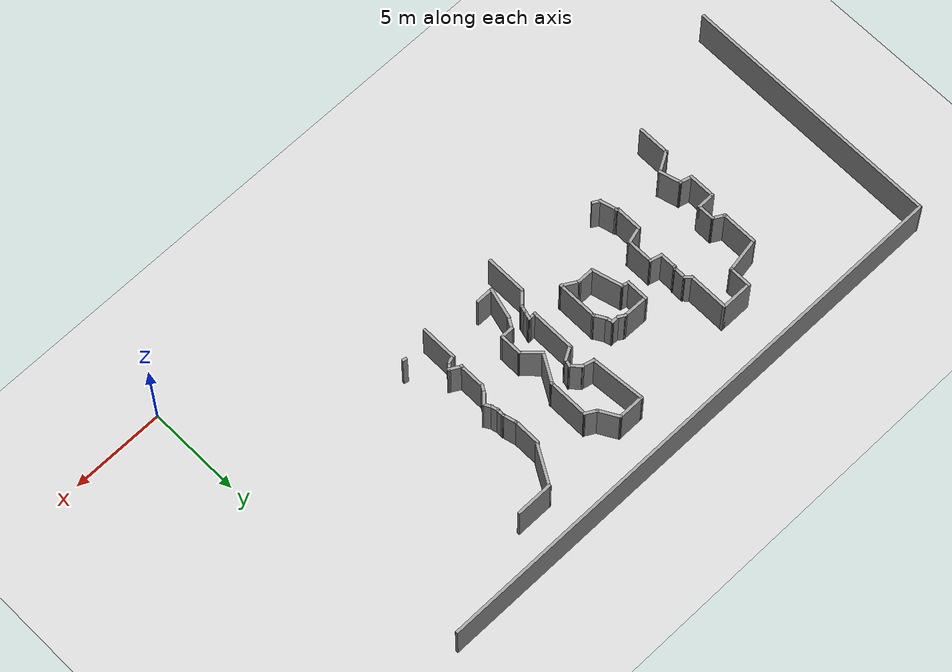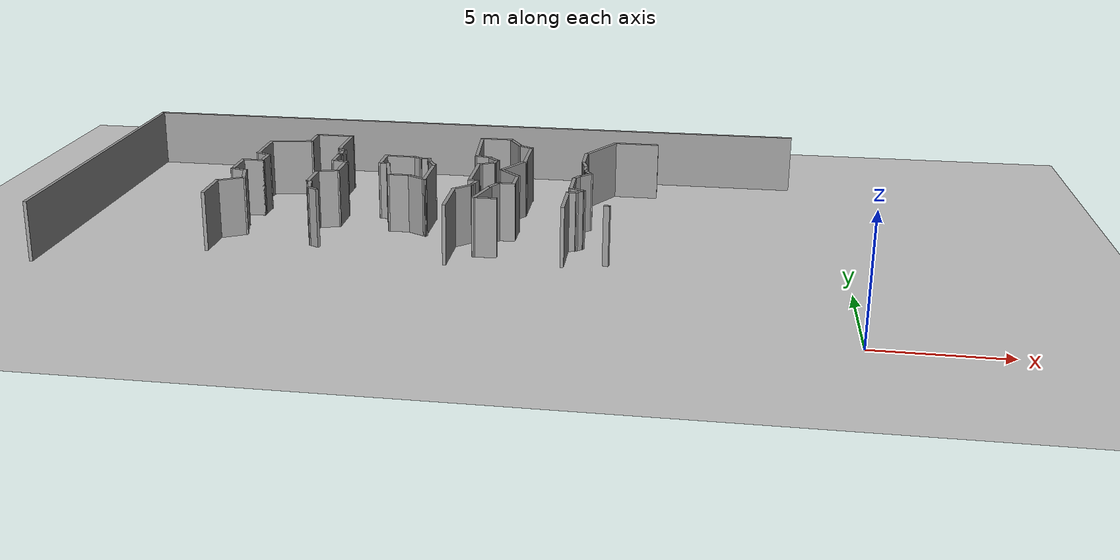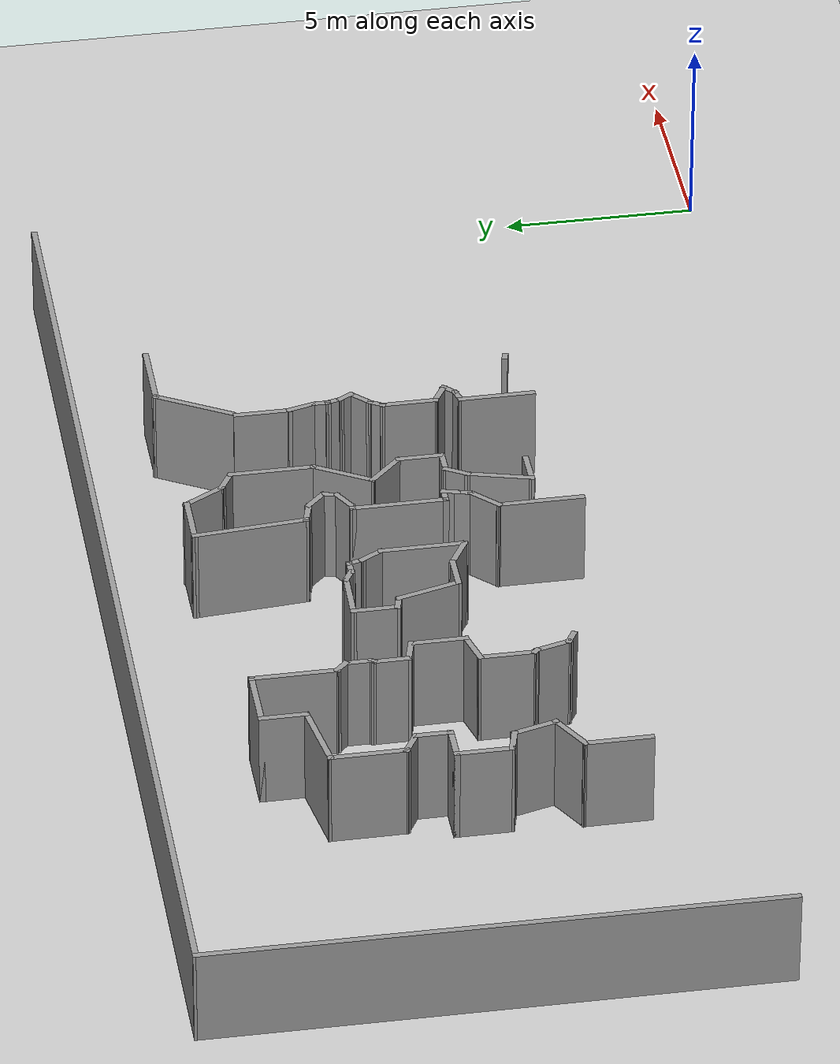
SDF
<sdf version="1.7">
 <world name="default">
  <model name="ground_plane">
   <static>1</static>
   <link name="link">
    <collision name="collision">
     <geometry><plane><normal>0 0 1</normal><size>100 100</size></plane></geometry>
     <surface>
      <contact><collide_bitmask>65535</collide_bitmask></contact>
      <friction><ode><mu>100</mu><mu2>50</mu2></ode></friction>
     </surface>
    </collision>
    <visual name="visual">
     <cast_shadows>0</cast_shadows>
     <geometry><plane><normal>0 0 1</normal><size>100 100</size></plane></geometry>
     <material>
      <script><uri>file://media/materials/scripts/gazebo.material</uri><name>Gazebo/Grey</name></script>
     </material>
    </visual>
   </link>
  </model>
  <model name="latest_world">
   <pose>-1.4911 -0.096187 0 0 -0 0</pose>
   <link name="Wall_0">
    <collision name="Wall_0_Collision">
     <geometry><box><size>30.25 0.15 2.5</size></box></geometry>
     <pose>0 0 1.25 0 -0 0</pose>
    </collision>
    <visual name="Wall_0_Visual">
     <pose>0 0 1.25 0 -0 0</pose>
     <geometry><box><size>30.25 0.15 2.5</size></box></geometry>
     <material>
      <script><uri>file://media/materials/scripts/gazebo.material</uri><name>Gazebo/Grey</name></script>
      <ambient>1 1 1 1</ambient>
     </material>
     <meta><layer>0</layer></meta>
    </visual>
    <pose>-15.4949 18.0157 0 0 -0 0</pose>
   </link>
   <link name="Wall_157">
    <collision name="Wall_157_Collision">
     <geometry><box><size>14.3423 0.15 2.5</size></box></geometry>
     <pose>0 0 1.25 0 -0 0</pose>
    </collision>
    <visual name="Wall_157_Visual">
     <pose>0 0 1.25 0 -0 0</pose>
     <geometry><box><size>14.3423 0.15 2.5</size></box></geometry>
     <material>
      <script><uri>file://media/materials/scripts/gazebo.material</uri><name>Gazebo/Grey</name></script>
      <ambient>1 1 1 1</ambient>
     </material>
     <meta><layer>0</layer></meta>
    </visual>
    <pose>-30.5913 10.9197 0 0 -0 1.56426</pose>
   </link>
   <link name="Wall_159">
    <collision name="Wall_159_Collision">
     <geometry><box><size>2 0.15 2.5</size></box></geometry>
     <pose>0 0 1.25 0 -0 0</pose>
    </collision>
    <visual name="Wall_159_Visual">
     <pose>0 0 1.25 0 -0 0</pose>
     <geometry><box><size>2 0.15 2.5</size></box></geometry>
     <material>
      <script><uri>file://media/materials/scripts/gazebo.material</uri><name>Gazebo/Grey</name></script>
      <ambient>1 1 1 1</ambient>
     </material>
     <meta><layer>0</layer></meta>
    </visual>
    <pose>-23.7095 12.8715 0 0 -0 -1.5708</pose>
   </link>
   <link name="Wall_160">
    <collision name="Wall_160_Collision">
     <geometry><box><size>0.75 0.15 2.5</size></box></geometry>
     <pose>0 0 1.25 0 -0 0</pose>
    </collision>
    <visual name="Wall_160_Visual">
     <pose>0 0 1.25 0 -0 0</pose>
     <geometry><box><size>0.75 0.15 2.5</size></box></geometry>
     <material>
      <script><uri>file://media/materials/scripts/gazebo.material</uri><name>Gazebo/Grey</name></script>
      <ambient>1 1 1 1</ambient>
     </material>
     <meta><layer>0</layer></meta>
    </visual>
    <pose>-23.4497 11.7965 0 0 -0 -0.523599</pose>
   </link>
   <link name="Wall_161">
    <collision name="Wall_161_Collision">
     <geometry><box><size>1 0.15 2.5</size></box></geometry>
     <pose>0 0 1.25 0 -0 0</pose>
    </collision>
    <visual name="Wall_161_Visual">
     <pose>0 0 1.25 0 -0 0</pose>
     <geometry><box><size>1 0.15 2.5</size></box></geometry>
     <material>
      <script><uri>file://media/materials/scripts/gazebo.material</uri><name>Gazebo/Grey</name></script>
      <ambient>1 1 1 1</ambient>
     </material>
     <meta><layer>0</layer></meta>
    </visual>
    <pose>-23.1899 11.2215 0 0 -0 -1.5708</pose>
   </link>
   <link name="Wall_162">
    <collision name="Wall_162_Collision">
     <geometry><box><size>1 0.15 2.5</size></box></geometry>
     <pose>0 0 1.25 0 -0 0</pose>
    </collision>
    <visual name="Wall_162_Visual">
     <pose>0 0 1.25 0 -0 0</pose>
     <geometry><box><size>1 0.15 2.5</size></box></geometry>
     <material>
      <script><uri>file://media/materials/scripts/gazebo.material</uri><name>Gazebo/Grey</name></script>
      <ambient>1 1 1 1</ambient>
     </material>
     <meta><layer>0</layer></meta>
    </visual>
    <pose>-23.6149 10.7965 0 0 -0 3.14159</pose>
   </link>
   <link name="Wall_163">
    <collision name="Wall_163_Collision">
     <geometry><box><size>1.5 0.15 2.5</size></box></geometry>
     <pose>0 0 1.25 0 -0 0</pose>
    </collision>
    <visual name="Wall_163_Visual">
     <pose>0 0 1.25 0 -0 0</pose>
     <geometry><box><size>1.5 0.15 2.5</size></box></geometry>
     <material>
      <script><uri>file://media/materials/scripts/gazebo.material</uri><name>Gazebo/Grey</name></script>
      <ambient>1 1 1 1</ambient>
     </material>
     <meta><layer>0</layer></meta>
    </visual>
    <pose>-24.0399 10.1215 0 0 -0 -1.5708</pose>
   </link>
   <link name="Wall_164">
    <collision name="Wall_164_Collision">
     <geometry><box><size>0.75 0.15 2.5</size></box></geometry>
     <pose>0 0 1.25 0 -0 0</pose>
    </collision>
    <visual name="Wall_164_Visual">
     <pose>0 0 1.25 0 -0 0</pose>
     <geometry><box><size>0.75 0.15 2.5</size></box></geometry>
     <material>
      <script><uri>file://media/materials/scripts/gazebo.material</uri><name>Gazebo/Grey</name></script>
      <ambient>1 1 1 1</ambient>
     </material>
     <meta><layer>0</layer></meta>
    </visual>
    <pose>-23.7501 9.36881 0 0 -0 -0.261799</pose>
   </link>
   <link name="Wall_165">
    <collision name="Wall_165_Collision">
     <geometry><box><size>1.25 0.15 2.5</size></box></geometry>
     <pose>0 0 1.25 0 -0 0</pose>
    </collision>
    <visual name="Wall_165_Visual">
     <pose>0 0 1.25 0 -0 0</pose>
     <geometry><box><size>1.25 0.15 2.5</size></box></geometry>
     <material>
      <script><uri>file://media/materials/scripts/gazebo.material</uri><name>Gazebo/Grey</name></script>
      <ambient>1 1 1 1</ambient>
     </material>
     <meta><layer>0</layer></meta>
    </visual>
    <pose>-23.318 8.7599 0 0 -0 -1.309</pose>
   </link>
   <link name="Wall_166">
    <collision name="Wall_166_Collision">
     <geometry><box><size>1.25 0.15 2.5</size></box></geometry>
     <pose>0 0 1.25 0 -0 0</pose>
    </collision>
    <visual name="Wall_166_Visual">
     <pose>0 0 1.25 0 -0 0</pose>
     <geometry><box><size>1.25 0.15 2.5</size></box></geometry>
     <material>
      <script><uri>file://media/materials/scripts/gazebo.material</uri><name>Gazebo/Grey</name></script>
      <ambient>1 1 1 1</ambient>
     </material>
     <meta><layer>0</layer></meta>
    </visual>
    <pose>-23.6519 7.95364 0 0 -0 -2.61799</pose>
   </link>
   <link name="Wall_167">
    <collision name="Wall_167_Collision">
     <geometry><box><size>1.75 0.15 2.5</size></box></geometry>
     <pose>0 0 1.25 0 -0 0</pose>
    </collision>
    <visual name="Wall_167_Visual">
     <pose>0 0 1.25 0 -0 0</pose>
     <geometry><box><size>1.75 0.15 2.5</size></box></geometry>
     <material>
      <script><uri>file://media/materials/scripts/gazebo.material</uri><name>Gazebo/Grey</name></script>
      <ambient>1 1 1 1</ambient>
     </material>
     <meta><layer>0</layer></meta>
    </visual>
    <pose>-24.1282 6.87864 0 0 -0 -1.5708</pose>
   </link>
   <link name="Wall_170">
    <collision name="Wall_170_Collision">
     <geometry><box><size>0.5 0.15 2.5</size></box></geometry>
     <pose>0 0 1.25 0 -0 0</pose>
    </collision>
    <visual name="Wall_170_Visual">
     <pose>0 0 1.25 0 -0 0</pose>
     <geometry><box><size>0.5 0.15 2.5</size></box></geometry>
     <material>
      <script><uri>file://media/materials/scripts/gazebo.material</uri><name>Gazebo/Grey</name></script>
      <ambient>1 1 1 1</ambient>
     </material>
     <meta><layer>0</layer></meta>
    </visual>
    <pose>-19.9298 7.26614 0 0 -0 2.61799</pose>
   </link>
   <link name="Wall_171">
    <collision name="Wall_171_Collision">
     <geometry><box><size>1 0.15 2.5</size></box></geometry>
     <pose>0 0 1.25 0 -0 0</pose>
    </collision>
    <visual name="Wall_171_Visual">
     <pose>0 0 1.25 0 -0 0</pose>
     <geometry><box><size>1 0.15 2.5</size></box></geometry>
     <material>
      <script><uri>file://media/materials/scripts/gazebo.material</uri><name>Gazebo/Grey</name></script>
      <ambient>1 1 1 1</ambient>
     </material>
     <meta><layer>0</layer></meta>
    </visual>
    <pose>-20.1913 7.76416 0 0 -0 1.8326</pose>
   </link>
   <link name="Wall_172">
    <collision name="Wall_172_Collision">
     <geometry><box><size>0.25 0.15 2.5</size></box></geometry>
     <pose>0 0 1.25 0 -0 0</pose>
    </collision>
    <visual name="Wall_172_Visual">
     <pose>0 0 1.25 0 -0 0</pose>
     <geometry><box><size>0.25 0.15 2.5</size></box></geometry>
     <material>
      <script><uri>file://media/materials/scripts/gazebo.material</uri><name>Gazebo/Grey</name></script>
      <ambient>1 1 1 1</ambient>
     </material>
     <meta><layer>0</layer></meta>
    </visual>
    <pose>-20.3367 8.21004 0 0 -0 2.35619</pose>
   </link>
   <link name="Wall_173">
    <collision name="Wall_173_Collision">
     <geometry><box><size>1.5 0.15 2.5</size></box></geometry>
     <pose>0 0 1.25 0 -0 0</pose>
    </collision>
    <visual name="Wall_173_Visual">
     <pose>0 0 1.25 0 -0 0</pose>
     <geometry><box><size>1.5 0.15 2.5</size></box></geometry>
     <material>
      <script><uri>file://media/materials/scripts/gazebo.material</uri><name>Gazebo/Grey</name></script>
      <ambient>1 1 1 1</ambient>
     </material>
     <meta><layer>0</layer></meta>
    </visual>
    <pose>-20.372 8.92039 0 0 -0 1.5708</pose>
   </link>
   <link name="Wall_174">
    <collision name="Wall_174_Collision">
     <geometry><box><size>1 0.15 2.5</size></box></geometry>
     <pose>0 0 1.25 0 -0 0</pose>
    </collision>
    <visual name="Wall_174_Visual">
     <pose>0 0 1.25 0 -0 0</pose>
     <geometry><box><size>1 0.15 2.5</size></box></geometry>
     <material>
      <script><uri>file://media/materials/scripts/gazebo.material</uri><name>Gazebo/Grey</name></script>
      <ambient>1 1 1 1</ambient>
     </material>
     <meta><layer>0</layer></meta>
    </visual>
    <pose>-19.9615 9.70539 0 0 -0 0.261799</pose>
   </link>
   <link name="Wall_175">
    <collision name="Wall_175_Collision">
     <geometry><box><size>1.5 0.15 2.5</size></box></geometry>
     <pose>0 0 1.25 0 -0 0</pose>
    </collision>
    <visual name="Wall_175_Visual">
     <pose>0 0 1.25 0 -0 0</pose>
     <geometry><box><size>1.5 0.15 2.5</size></box></geometry>
     <material>
      <script><uri>file://media/materials/scripts/gazebo.material</uri><name>Gazebo/Grey</name></script>
      <ambient>1 1 1 1</ambient>
     </material>
     <meta><layer>0</layer></meta>
    </visual>
    <pose>-19.551 10.4904 0 0 -0 1.5708</pose>
   </link>
   <link name="Wall_176">
    <collision name="Wall_176_Collision">
     <geometry><box><size>0.75 0.15 2.5</size></box></geometry>
     <pose>0 0 1.25 0 -0 0</pose>
    </collision>
    <visual name="Wall_176_Visual">
     <pose>0 0 1.25 0 -0 0</pose>
     <geometry><box><size>0.75 0.15 2.5</size></box></geometry>
     <material>
      <script><uri>file://media/materials/scripts/gazebo.material</uri><name>Gazebo/Grey</name></script>
      <ambient>1 1 1 1</ambient>
     </material>
     <meta><layer>0</layer></meta>
    </visual>
    <pose>-19.8408 11.243 0 0 -0 2.87979</pose>
   </link>
   <link name="Wall_177">
    <collision name="Wall_177_Collision">
     <geometry><box><size>1 0.15 2.5</size></box></geometry>
     <pose>0 0 1.25 0 -0 0</pose>
    </collision>
    <visual name="Wall_177_Visual">
     <pose>0 0 1.25 0 -0 0</pose>
     <geometry><box><size>1 0.15 2.5</size></box></geometry>
     <material>
      <script><uri>file://media/materials/scripts/gazebo.material</uri><name>Gazebo/Grey</name></script>
      <ambient>1 1 1 1</ambient>
     </material>
     <meta><layer>0</layer></meta>
    </visual>
    <pose>-20.1306 11.7457 0 0 -0 1.5708</pose>
   </link>
   <link name="Wall_178">
    <collision name="Wall_178_Collision">
     <geometry><box><size>0.25 0.15 2.5</size></box></geometry>
     <pose>0 0 1.25 0 -0 0</pose>
    </collision>
    <visual name="Wall_178_Visual">
     <pose>0 0 1.25 0 -0 0</pose>
     <geometry><box><size>0.25 0.15 2.5</size></box></geometry>
     <material>
      <script><uri>file://media/materials/scripts/gazebo.material</uri><name>Gazebo/Grey</name></script>
      <ambient>1 1 1 1</ambient>
     </material>
     <meta><layer>0</layer></meta>
    </visual>
    <pose>-20.1056 12.214 0 0 -0 1.0472</pose>
   </link>
   <link name="Wall_179">
    <collision name="Wall_179_Collision">
     <geometry><box><size>0.75 0.15 2.5</size></box></geometry>
     <pose>0 0 1.25 0 -0 0</pose>
    </collision>
    <visual name="Wall_179_Visual">
     <pose>0 0 1.25 0 -0 0</pose>
     <geometry><box><size>0.75 0.15 2.5</size></box></geometry>
     <material>
      <script><uri>file://media/materials/scripts/gazebo.material</uri><name>Gazebo/Grey</name></script>
      <ambient>1 1 1 1</ambient>
     </material>
     <meta><layer>0</layer></meta>
    </visual>
    <pose>-20.0806 12.5573 0 0 -0 1.5708</pose>
   </link>
   <link name="Wall_180">
    <collision name="Wall_180_Collision">
     <geometry><box><size>0.5 0.15 2.5</size></box></geometry>
     <pose>0 0 1.25 0 -0 0</pose>
    </collision>
    <visual name="Wall_180_Visual">
     <pose>0 0 1.25 0 -0 0</pose>
     <geometry><box><size>0.5 0.15 2.5</size></box></geometry>
     <material>
      <script><uri>file://media/materials/scripts/gazebo.material</uri><name>Gazebo/Grey</name></script>
      <ambient>1 1 1 1</ambient>
     </material>
     <meta><layer>0</layer></meta>
    </visual>
    <pose>-20.2043 12.981 0 0 -0 2.35619</pose>
   </link>
   <link name="Wall_181">
    <collision name="Wall_181_Collision">
     <geometry><box><size>2.25 0.15 2.5</size></box></geometry>
     <pose>0 0 1.25 0 -0 0</pose>
    </collision>
    <visual name="Wall_181_Visual">
     <pose>0 0 1.25 0 -0 0</pose>
     <geometry><box><size>2.25 0.15 2.5</size></box></geometry>
     <material>
      <script><uri>file://media/materials/scripts/gazebo.material</uri><name>Gazebo/Grey</name></script>
      <ambient>1 1 1 1</ambient>
     </material>
     <meta><layer>0</layer></meta>
    </visual>
    <pose>-20.3281 14.1548 0 0 -0 1.5708</pose>
   </link>
   <link name="Wall_182">
    <collision name="Wall_182_Collision">
     <geometry><box><size>1.75 0.15 2.5</size></box></geometry>
     <pose>0 0 1.25 0 -0 0</pose>
    </collision>
    <visual name="Wall_182_Visual">
     <pose>0 0 1.25 0 -0 0</pose>
     <geometry><box><size>1.75 0.15 2.5</size></box></geometry>
     <material>
      <script><uri>file://media/materials/scripts/gazebo.material</uri><name>Gazebo/Grey</name></script>
      <ambient>1 1 1 1</ambient>
     </material>
     <meta><layer>0</layer></meta>
    </visual>
    <pose>-21.1281 15.2048 0 0 -0 3.14159</pose>
   </link>
   <link name="Wall_183">
    <collision name="Wall_183_Collision">
     <geometry><box><size>1.25 0.15 2.5</size></box></geometry>
     <pose>0 0 1.25 0 -0 0</pose>
    </collision>
    <visual name="Wall_183_Visual">
     <pose>0 0 1.25 0 -0 0</pose>
     <geometry><box><size>1.25 0.15 2.5</size></box></geometry>
     <material>
      <script><uri>file://media/materials/scripts/gazebo.material</uri><name>Gazebo/Grey</name></script>
      <ambient>1 1 1 1</ambient>
     </material>
     <meta><layer>0</layer></meta>
    </visual>
    <pose>-21.9281 14.6548 0 0 -0 -1.5708</pose>
   </link>
   <link name="Wall_186">
    <collision name="Wall_186_Collision">
     <geometry><box><size>1.95791 0.15 2.5</size></box></geometry>
     <pose>0 0 1.25 0 -0 0</pose>
    </collision>
    <visual name="Wall_186_Visual">
     <pose>0 0 1.25 0 -0 0</pose>
     <geometry><box><size>1.95791 0.15 2.5</size></box></geometry>
     <material>
      <script><uri>file://media/materials/scripts/gazebo.material</uri><name>Gazebo/Grey</name></script>
      <ambient>1 1 1 1</ambient>
     </material>
     <meta><layer>0</layer></meta>
    </visual>
    <pose>-22.8188 13.9506 0 0 -0 0.171375</pose>
   </link>
   <link name="Wall_188">
    <collision name="Wall_188_Collision">
     <geometry><box><size>1.25 0.15 2.5</size></box></geometry>
     <pose>0 0 1.25 0 -0 0</pose>
    </collision>
    <visual name="Wall_188_Visual">
     <pose>0 0 1.25 0 -0 0</pose>
     <geometry><box><size>1.25 0.15 2.5</size></box></geometry>
     <material>
      <script><uri>file://media/materials/scripts/gazebo.material</uri><name>Gazebo/Grey</name></script>
      <ambient>1 1 1 1</ambient>
     </material>
     <meta><layer>0</layer></meta>
    </visual>
    <pose>-18.0298 11.7985 0 0 -0 -1.5708</pose>
   </link>
   <link name="Wall_189">
    <collision name="Wall_189_Collision">
     <geometry><box><size>0.5 0.15 2.5</size></box></geometry>
     <pose>0 0 1.25 0 -0 0</pose>
    </collision>
    <visual name="Wall_189_Visual">
     <pose>0 0 1.25 0 -0 0</pose>
     <geometry><box><size>0.5 0.15 2.5</size></box></geometry>
     <material>
      <script><uri>file://media/materials/scripts/gazebo.material</uri><name>Gazebo/Grey</name></script>
      <ambient>1 1 1 1</ambient>
     </material>
     <meta><layer>0</layer></meta>
    </visual>
    <pose>-17.8608 11.2032 0 0 -0 -0.261799</pose>
   </link>
   <link name="Wall_190">
    <collision name="Wall_190_Collision">
     <geometry><box><size>1.75 0.15 2.5</size></box></geometry>
     <pose>0 0 1.25 0 -0 0</pose>
    </collision>
    <visual name="Wall_190_Visual">
     <pose>0 0 1.25 0 -0 0</pose>
     <geometry><box><size>1.75 0.15 2.5</size></box></geometry>
     <material>
      <script><uri>file://media/materials/scripts/gazebo.material</uri><name>Gazebo/Grey</name></script>
      <ambient>1 1 1 1</ambient>
     </material>
     <meta><layer>0</layer></meta>
    </visual>
    <pose>-17.4847 10.3852 0 0 -0 -1.309</pose>
   </link>
   <link name="Wall_191">
    <collision name="Wall_191_Collision">
     <geometry><box><size>1 0.15 2.5</size></box></geometry>
     <pose>0 0 1.25 0 -0 0</pose>
    </collision>
    <visual name="Wall_191_Visual">
     <pose>0 0 1.25 0 -0 0</pose>
     <geometry><box><size>1 0.15 2.5</size></box></geometry>
     <material>
      <script><uri>file://media/materials/scripts/gazebo.material</uri><name>Gazebo/Grey</name></script>
      <ambient>1 1 1 1</ambient>
     </material>
     <meta><layer>0</layer></meta>
    </visual>
    <pose>-16.8526 9.61244 0 0 -0 0</pose>
   </link>
   <link name="Wall_192">
    <collision name="Wall_192_Collision">
     <geometry><box><size>1 0.15 2.5</size></box></geometry>
     <pose>0 0 1.25 0 -0 0</pose>
    </collision>
    <visual name="Wall_192_Visual">
     <pose>0 0 1.25 0 -0 0</pose>
     <geometry><box><size>1 0.15 2.5</size></box></geometry>
     <material>
      <script><uri>file://media/materials/scripts/gazebo.material</uri><name>Gazebo/Grey</name></script>
      <ambient>1 1 1 1</ambient>
     </material>
     <meta><layer>0</layer></meta>
    </visual>
    <pose>-16.0596 9.39995 0 0 -0 -0.523599</pose>
   </link>
   <link name="Wall_193">
    <collision name="Wall_193_Collision">
     <geometry><box><size>2.25 0.15 2.5</size></box></geometry>
     <pose>0 0 1.25 0 -0 0</pose>
    </collision>
    <visual name="Wall_193_Visual">
     <pose>0 0 1.25 0 -0 0</pose>
     <geometry><box><size>2.25 0.15 2.5</size></box></geometry>
     <material>
      <script><uri>file://media/materials/scripts/gazebo.material</uri><name>Gazebo/Grey</name></script>
      <ambient>1 1 1 1</ambient>
     </material>
     <meta><layer>0</layer></meta>
    </visual>
    <pose>-15.6915 10.2374 0 0 -0 1.5708</pose>
   </link>
   <link name="Wall_194">
    <collision name="Wall_194_Collision">
     <geometry><box><size>0.75 0.15 2.5</size></box></geometry>
     <pose>0 0 1.25 0 -0 0</pose>
    </collision>
    <visual name="Wall_194_Visual">
     <pose>0 0 1.25 0 -0 0</pose>
     <geometry><box><size>0.75 0.15 2.5</size></box></geometry>
     <material>
      <script><uri>file://media/materials/scripts/gazebo.material</uri><name>Gazebo/Grey</name></script>
      <ambient>1 1 1 1</ambient>
     </material>
     <meta><layer>0</layer></meta>
    </visual>
    <pose>-15.8415 11.5473 0 0 -0 2.0944</pose>
   </link>
   <link name="Wall_195">
    <collision name="Wall_195_Collision">
     <geometry><box><size>0.5 0.15 2.5</size></box></geometry>
     <pose>0 0 1.25 0 -0 0</pose>
    </collision>
    <visual name="Wall_195_Visual">
     <pose>0 0 1.25 0 -0 0</pose>
     <geometry><box><size>0.5 0.15 2.5</size></box></geometry>
     <material>
      <script><uri>file://media/materials/scripts/gazebo.material</uri><name>Gazebo/Grey</name></script>
      <ambient>1 1 1 1</ambient>
     </material>
     <meta><layer>0</layer></meta>
    </visual>
    <pose>-16.0368 11.9761 0 0 -0 1.8326</pose>
   </link>
   <link name="Wall_196">
    <collision name="Wall_196_Collision">
     <geometry><box><size>0.5 0.15 2.5</size></box></geometry>
     <pose>0 0 1.25 0 -0 0</pose>
    </collision>
    <visual name="Wall_196_Visual">
     <pose>0 0 1.25 0 -0 0</pose>
     <geometry><box><size>0.5 0.15 2.5</size></box></geometry>
     <material>
      <script><uri>file://media/materials/scripts/gazebo.material</uri><name>Gazebo/Grey</name></script>
      <ambient>1 1 1 1</ambient>
     </material>
     <meta><layer>0</layer></meta>
    </visual>
    <pose>-16.2571 12.1451 0 0 -0 3.14159</pose>
   </link>
   <link name="Wall_197">
    <collision name="Wall_197_Collision">
     <geometry><box><size>0.5 0.15 2.5</size></box></geometry>
     <pose>0 0 1.25 0 -0 0</pose>
    </collision>
    <visual name="Wall_197_Visual">
     <pose>0 0 1.25 0 -0 0</pose>
     <geometry><box><size>0.5 0.15 2.5</size></box></geometry>
     <material>
      <script><uri>file://media/materials/scripts/gazebo.material</uri><name>Gazebo/Grey</name></script>
      <ambient>1 1 1 1</ambient>
     </material>
     <meta><layer>0</layer></meta>
    </visual>
    <pose>-16.5836 12.2326 0 0 -0 2.61799</pose>
   </link>
   <link name="Wall_198">
    <collision name="Wall_198_Collision">
     <geometry><box><size>1.44492 0.15 2.5</size></box></geometry>
     <pose>0 0 1.25 0 -0 0</pose>
    </collision>
    <visual name="Wall_198_Visual">
     <pose>0 0 1.25 0 -0 0</pose>
     <geometry><box><size>1.44492 0.15 2.5</size></box></geometry>
     <material>
      <script><uri>file://media/materials/scripts/gazebo.material</uri><name>Gazebo/Grey</name></script>
      <ambient>1 1 1 1</ambient>
     </material>
     <meta><layer>0</layer></meta>
    </visual>
    <pose>-17.3825 12.3343 0 0 -0 3.11968</pose>
   </link>
   <link name="Wall_211">
    <collision name="Wall_211_Collision">
     <geometry><box><size>1.5 0.15 2.5</size></box></geometry>
     <pose>0 0 1.25 0 -0 0</pose>
    </collision>
    <visual name="Wall_211_Visual">
     <pose>0 0 1.25 0 -0 0</pose>
     <geometry><box><size>1.5 0.15 2.5</size></box></geometry>
     <material>
      <script><uri>file://media/materials/scripts/gazebo.material</uri><name>Gazebo/Grey</name></script>
      <ambient>1 1 1 1</ambient>
     </material>
     <meta><layer>0</layer></meta>
    </visual>
    <pose>-13.6508 15.7495 0 0 -0 0</pose>
   </link>
   <link name="Wall_212">
    <collision name="Wall_212_Collision">
     <geometry><box><size>1.25 0.15 2.5</size></box></geometry>
     <pose>0 0 1.25 0 -0 0</pose>
    </collision>
    <visual name="Wall_212_Visual">
     <pose>0 0 1.25 0 -0 0</pose>
     <geometry><box><size>1.25 0.15 2.5</size></box></geometry>
     <material>
      <script><uri>file://media/materials/scripts/gazebo.material</uri><name>Gazebo/Grey</name></script>
      <ambient>1 1 1 1</ambient>
     </material>
     <meta><layer>0</layer></meta>
    </visual>
    <pose>-12.7008 15.2732 0 0 -0 -1.0472</pose>
   </link>
   <link name="Wall_213">
    <collision name="Wall_213_Collision">
     <geometry><box><size>0.75 0.15 2.5</size></box></geometry>
     <pose>0 0 1.25 0 -0 0</pose>
    </collision>
    <visual name="Wall_213_Visual">
     <pose>0 0 1.25 0 -0 0</pose>
     <geometry><box><size>0.75 0.15 2.5</size></box></geometry>
     <material>
      <script><uri>file://media/materials/scripts/gazebo.material</uri><name>Gazebo/Grey</name></script>
      <ambient>1 1 1 1</ambient>
     </material>
     <meta><layer>0</layer></meta>
    </visual>
    <pose>-12.166 14.6469 0 0 -0 -0.523599</pose>
   </link>
   <link name="Wall_214">
    <collision name="Wall_214_Collision">
     <geometry><box><size>2.25 0.15 2.5</size></box></geometry>
     <pose>0 0 1.25 0 -0 0</pose>
    </collision>
    <visual name="Wall_214_Visual">
     <pose>0 0 1.25 0 -0 0</pose>
     <geometry><box><size>2.25 0.15 2.5</size></box></geometry>
     <material>
      <script><uri>file://media/materials/scripts/gazebo.material</uri><name>Gazebo/Grey</name></script>
      <ambient>1 1 1 1</ambient>
     </material>
     <meta><layer>0</layer></meta>
    </visual>
    <pose>-11.9062 13.4469 0 0 -0 -1.5708</pose>
   </link>
   <link name="Wall_215">
    <collision name="Wall_215_Collision">
     <geometry><box><size>1.75 0.15 2.5</size></box></geometry>
     <pose>0 0 1.25 0 -0 0</pose>
    </collision>
    <visual name="Wall_215_Visual">
     <pose>0 0 1.25 0 -0 0</pose>
     <geometry><box><size>1.75 0.15 2.5</size></box></geometry>
     <material>
      <script><uri>file://media/materials/scripts/gazebo.material</uri><name>Gazebo/Grey</name></script>
      <ambient>1 1 1 1</ambient>
     </material>
     <meta><layer>0</layer></meta>
    </visual>
    <pose>-12.3062 11.7041 0 0 -0 -2.0944</pose>
   </link>
   <link name="Wall_216">
    <collision name="Wall_216_Collision">
     <geometry><box><size>1.25 0.15 2.5</size></box></geometry>
     <pose>0 0 1.25 0 -0 0</pose>
    </collision>
    <visual name="Wall_216_Visual">
     <pose>0 0 1.25 0 -0 0</pose>
     <geometry><box><size>1.25 0.15 2.5</size></box></geometry>
     <material>
      <script><uri>file://media/materials/scripts/gazebo.material</uri><name>Gazebo/Grey</name></script>
      <ambient>1 1 1 1</ambient>
     </material>
     <meta><layer>0</layer></meta>
    </visual>
    <pose>-12.3173 10.6224 0 0 -0 -0.785398</pose>
   </link>
   <link name="Wall_217">
    <collision name="Wall_217_Collision">
     <geometry><box><size>1.25 0.15 2.5</size></box></geometry>
     <pose>0 0 1.25 0 -0 0</pose>
    </collision>
    <visual name="Wall_217_Visual">
     <pose>0 0 1.25 0 -0 0</pose>
     <geometry><box><size>1.25 0.15 2.5</size></box></geometry>
     <material>
      <script><uri>file://media/materials/scripts/gazebo.material</uri><name>Gazebo/Grey</name></script>
      <ambient>1 1 1 1</ambient>
     </material>
     <meta><layer>0</layer></meta>
    </visual>
    <pose>-11.9284 9.68346 0 0 -0 -1.5708</pose>
   </link>
   <link name="Wall_218">
    <collision name="Wall_218_Collision">
     <geometry><box><size>0.75 0.15 2.5</size></box></geometry>
     <pose>0 0 1.25 0 -0 0</pose>
    </collision>
    <visual name="Wall_218_Visual">
     <pose>0 0 1.25 0 -0 0</pose>
     <geometry><box><size>0.75 0.15 2.5</size></box></geometry>
     <material>
      <script><uri>file://media/materials/scripts/gazebo.material</uri><name>Gazebo/Grey</name></script>
      <ambient>1 1 1 1</ambient>
     </material>
     <meta><layer>0</layer></meta>
    </visual>
    <pose>-12.2284 9.13346 0 0 -0 3.14159</pose>
   </link>
   <link name="Wall_219">
    <collision name="Wall_219_Collision">
     <geometry><box><size>0.75 0.15 2.5</size></box></geometry>
     <pose>0 0 1.25 0 -0 0</pose>
    </collision>
    <visual name="Wall_219_Visual">
     <pose>0 0 1.25 0 -0 0</pose>
     <geometry><box><size>0.75 0.15 2.5</size></box></geometry>
     <material>
      <script><uri>file://media/materials/scripts/gazebo.material</uri><name>Gazebo/Grey</name></script>
      <ambient>1 1 1 1</ambient>
     </material>
     <meta><layer>0</layer></meta>
    </visual>
    <pose>-12.6784 8.87365 0 0 -0 -2.0944</pose>
   </link>
   <link name="Wall_220">
    <collision name="Wall_220_Collision">
     <geometry><box><size>1.75 0.15 2.5</size></box></geometry>
     <pose>0 0 1.25 0 -0 0</pose>
    </collision>
    <visual name="Wall_220_Visual">
     <pose>0 0 1.25 0 -0 0</pose>
     <geometry><box><size>1.75 0.15 2.5</size></box></geometry>
     <material>
      <script><uri>file://media/materials/scripts/gazebo.material</uri><name>Gazebo/Grey</name></script>
      <ambient>1 1 1 1</ambient>
     </material>
     <meta><layer>0</layer></meta>
    </visual>
    <pose>-13.0354 7.8411 0 0 -0 -1.8326</pose>
   </link>
   <link name="Wall_221">
    <collision name="Wall_221_Collision">
     <geometry><box><size>1 0.15 2.5</size></box></geometry>
     <pose>0 0 1.25 0 -0 0</pose>
    </collision>
    <visual name="Wall_221_Visual">
     <pose>0 0 1.25 0 -0 0</pose>
     <geometry><box><size>1 0.15 2.5</size></box></geometry>
     <material>
      <script><uri>file://media/materials/scripts/gazebo.material</uri><name>Gazebo/Grey</name></script>
      <ambient>1 1 1 1</ambient>
     </material>
     <meta><layer>0</layer></meta>
    </visual>
    <pose>-12.8175 7.06837 0 0 -0 0</pose>
   </link>
   <link name="Wall_224">
    <collision name="Wall_224_Collision">
     <geometry><box><size>2.25 0.15 2.5</size></box></geometry>
     <pose>0 0 1.25 0 -0 0</pose>
    </collision>
    <visual name="Wall_224_Visual">
     <pose>0 0 1.25 0 -0 0</pose>
     <geometry><box><size>2.25 0.15 2.5</size></box></geometry>
     <material>
      <script><uri>file://media/materials/scripts/gazebo.material</uri><name>Gazebo/Grey</name></script>
      <ambient>1 1 1 1</ambient>
     </material>
     <meta><layer>0</layer></meta>
    </visual>
    <pose>-14.2425 7.01837 0 0 -0 1.5708</pose>
   </link>
   <link name="Wall_225">
    <collision name="Wall_225_Collision">
     <geometry><box><size>1 0.15 2.5</size></box></geometry>
     <pose>0 0 1.25 0 -0 0</pose>
    </collision>
    <visual name="Wall_225_Visual">
     <pose>0 0 1.25 0 -0 0</pose>
     <geometry><box><size>1 0.15 2.5</size></box></geometry>
     <material>
      <script><uri>file://media/materials/scripts/gazebo.material</uri><name>Gazebo/Grey</name></script>
      <ambient>1 1 1 1</ambient>
     </material>
     <meta><layer>0</layer></meta>
    </visual>
    <pose>-13.942 8.36889 0 0 -0 0.785398</pose>
   </link>
   <link name="Wall_226">
    <collision name="Wall_226_Collision">
     <geometry><box><size>0.5 0.15 2.5</size></box></geometry>
     <pose>0 0 1.25 0 -0 0</pose>
    </collision>
    <visual name="Wall_226_Visual">
     <pose>0 0 1.25 0 -0 0</pose>
     <geometry><box><size>0.5 0.15 2.5</size></box></geometry>
     <material>
      <script><uri>file://media/materials/scripts/gazebo.material</uri><name>Gazebo/Grey</name></script>
      <ambient>1 1 1 1</ambient>
     </material>
     <meta><layer>0</layer></meta>
    </visual>
    <pose>-13.5962 8.83844 0 0 -0 1.309</pose>
   </link>
   <link name="Wall_227">
    <collision name="Wall_227_Collision">
     <geometry><box><size>0.5 0.15 2.5</size></box></geometry>
     <pose>0 0 1.25 0 -0 0</pose>
    </collision>
    <visual name="Wall_227_Visual">
     <pose>0 0 1.25 0 -0 0</pose>
     <geometry><box><size>0.5 0.15 2.5</size></box></geometry>
     <material>
      <script><uri>file://media/materials/scripts/gazebo.material</uri><name>Gazebo/Grey</name></script>
      <ambient>1 1 1 1</ambient>
     </material>
     <meta><layer>0</layer></meta>
    </visual>
    <pose>-13.5056 9.17652 0 0 -0 1.309</pose>
   </link>
   <link name="Wall_228">
    <collision name="Wall_228_Collision">
     <geometry><box><size>0.5 0.15 2.5</size></box></geometry>
     <pose>0 0 1.25 0 -0 0</pose>
    </collision>
    <visual name="Wall_228_Visual">
     <pose>0 0 1.25 0 -0 0</pose>
     <geometry><box><size>0.5 0.15 2.5</size></box></geometry>
     <material>
      <script><uri>file://media/materials/scripts/gazebo.material</uri><name>Gazebo/Grey</name></script>
      <ambient>1 1 1 1</ambient>
     </material>
     <meta><layer>0</layer></meta>
    </visual>
    <pose>-13.6353 9.34555 0 0 -0 3.14159</pose>
   </link>
   <link name="Wall_229">
    <collision name="Wall_229_Collision">
     <geometry><box><size>2.5 0.15 2.5</size></box></geometry>
     <pose>0 0 1.25 0 -0 0</pose>
    </collision>
    <visual name="Wall_229_Visual">
     <pose>0 0 1.25 0 -0 0</pose>
     <geometry><box><size>2.5 0.15 2.5</size></box></geometry>
     <material>
      <script><uri>file://media/materials/scripts/gazebo.material</uri><name>Gazebo/Grey</name></script>
      <ambient>1 1 1 1</ambient>
     </material>
     <meta><layer>0</layer></meta>
    </visual>
    <pose>-13.8103 10.5206 0 0 -0 1.5708</pose>
   </link>
   <link name="Wall_230">
    <collision name="Wall_230_Collision">
     <geometry><box><size>0.25 0.15 2.5</size></box></geometry>
     <pose>0 0 1.25 0 -0 0</pose>
    </collision>
    <visual name="Wall_230_Visual">
     <pose>0 0 1.25 0 -0 0</pose>
     <geometry><box><size>0.25 0.15 2.5</size></box></geometry>
     <material>
      <script><uri>file://media/materials/scripts/gazebo.material</uri><name>Gazebo/Grey</name></script>
      <ambient>1 1 1 1</ambient>
     </material>
     <meta><layer>0</layer></meta>
    </visual>
    <pose>-13.7603 11.6956 0 0 -0 0</pose>
   </link>
   <link name="Wall_231">
    <collision name="Wall_231_Collision">
     <geometry><box><size>0.75 0.15 2.5</size></box></geometry>
     <pose>0 0 1.25 0 -0 0</pose>
    </collision>
    <visual name="Wall_231_Visual">
     <pose>0 0 1.25 0 -0 0</pose>
     <geometry><box><size>0.75 0.15 2.5</size></box></geometry>
     <material>
      <script><uri>file://media/materials/scripts/gazebo.material</uri><name>Gazebo/Grey</name></script>
      <ambient>1 1 1 1</ambient>
     </material>
     <meta><layer>0</layer></meta>
    </visual>
    <pose>-13.4505 11.8456 0 0 -0 0.523599</pose>
   </link>
   <link name="Wall_232">
    <collision name="Wall_232_Collision">
     <geometry><box><size>0.5 0.15 2.5</size></box></geometry>
     <pose>0 0 1.25 0 -0 0</pose>
    </collision>
    <visual name="Wall_232_Visual">
     <pose>0 0 1.25 0 -0 0</pose>
     <geometry><box><size>0.5 0.15 2.5</size></box></geometry>
     <material>
      <script><uri>file://media/materials/scripts/gazebo.material</uri><name>Gazebo/Grey</name></script>
      <ambient>1 1 1 1</ambient>
     </material>
     <meta><layer>0</layer></meta>
    </visual>
    <pose>-13.1454 12.1646 0 0 -0 1.309</pose>
   </link>
   <link name="Wall_233">
    <collision name="Wall_233_Collision">
     <geometry><box><size>0.75 0.15 2.5</size></box></geometry>
     <pose>0 0 1.25 0 -0 0</pose>
    </collision>
    <visual name="Wall_233_Visual">
     <pose>0 0 1.25 0 -0 0</pose>
     <geometry><box><size>0.75 0.15 2.5</size></box></geometry>
     <material>
      <script><uri>file://media/materials/scripts/gazebo.material</uri><name>Gazebo/Grey</name></script>
      <ambient>1 1 1 1</ambient>
     </material>
     <meta><layer>0</layer></meta>
    </visual>
    <pose>-13.3122 12.5458 0 0 -0 2.35619</pose>
   </link>
   <link name="Wall_234">
    <collision name="Wall_234_Collision">
     <geometry><box><size>0.75 0.15 2.5</size></box></geometry>
     <pose>0 0 1.25 0 -0 0</pose>
    </collision>
    <visual name="Wall_234_Visual">
     <pose>0 0 1.25 0 -0 0</pose>
     <geometry><box><size>0.75 0.15 2.5</size></box></geometry>
     <material>
      <script><uri>file://media/materials/scripts/gazebo.material</uri><name>Gazebo/Grey</name></script>
      <ambient>1 1 1 1</ambient>
     </material>
     <meta><layer>0</layer></meta>
    </visual>
    <pose>-13.8141 12.8355 0 0 -0 2.87979</pose>
   </link>
   <link name="Wall_235">
    <collision name="Wall_235_Collision">
     <geometry><box><size>2.99503 0.15 2.5</size></box></geometry>
     <pose>0 0 1.25 0 -0 0</pose>
    </collision>
    <visual name="Wall_235_Visual">
     <pose>0 0 1.25 0 -0 0</pose>
     <geometry><box><size>2.99503 0.15 2.5</size></box></geometry>
     <material>
      <script><uri>file://media/materials/scripts/gazebo.material</uri><name>Gazebo/Grey</name></script>
      <ambient>1 1 1 1</ambient>
     </material>
     <meta><layer>0</layer></meta>
    </visual>
    <pose>-14.2149 14.3314 0 0 -0 1.64888</pose>
   </link>
   <link name="Wall_237">
    <collision name="Wall_237_Collision">
     <geometry><box><size>1.5 0.15 2.5</size></box></geometry>
     <pose>0 0 1.25 0 -0 0</pose>
    </collision>
    <visual name="Wall_237_Visual">
     <pose>0 0 1.25 0 -0 0</pose>
     <geometry><box><size>1.5 0.15 2.5</size></box></geometry>
     <material>
      <script><uri>file://media/materials/scripts/gazebo.material</uri><name>Gazebo/Grey</name></script>
      <ambient>1 1 1 1</ambient>
     </material>
     <meta><layer>0</layer></meta>
    </visual>
    <pose>-9.39119 13.3093 0 0 -0 -1.5708</pose>
   </link>
   <link name="Wall_238">
    <collision name="Wall_238_Collision">
     <geometry><box><size>0.83117 0.15 2.5</size></box></geometry>
     <pose>0 0 1.25 0 -0 0</pose>
    </collision>
    <visual name="Wall_238_Visual">
     <pose>0 0 1.25 0 -0 0</pose>
     <geometry><box><size>0.83117 0.15 2.5</size></box></geometry>
     <material>
      <script><uri>file://media/materials/scripts/gazebo.material</uri><name>Gazebo/Grey</name></script>
      <ambient>1 1 1 1</ambient>
     </material>
     <meta><layer>0</layer></meta>
    </visual>
    <pose>-9.29619 12.2945 0 0 -0 -1.31856</pose>
   </link>
   <link name="Wall_239">
    <collision name="Wall_239_Collision">
     <geometry><box><size>0.5 0.15 2.5</size></box></geometry>
     <pose>0 0 1.25 0 -0 0</pose>
    </collision>
    <visual name="Wall_239_Visual">
     <pose>0 0 1.25 0 -0 0</pose>
     <geometry><box><size>0.5 0.15 2.5</size></box></geometry>
     <material>
      <script><uri>file://media/materials/scripts/gazebo.material</uri><name>Gazebo/Grey</name></script>
      <ambient>1 1 1 1</ambient>
     </material>
     <meta><layer>0</layer></meta>
    </visual>
    <pose>-9.21119 11.7897 0 0 -0 -1.5708</pose>
   </link>
   <link name="Wall_240">
    <collision name="Wall_240_Collision">
     <geometry><box><size>0.5 0.15 2.5</size></box></geometry>
     <pose>0 0 1.25 0 -0 0</pose>
    </collision>
    <visual name="Wall_240_Visual">
     <pose>0 0 1.25 0 -0 0</pose>
     <geometry><box><size>0.5 0.15 2.5</size></box></geometry>
     <material>
      <script><uri>file://media/materials/scripts/gazebo.material</uri><name>Gazebo/Grey</name></script>
      <ambient>1 1 1 1</ambient>
     </material>
     <meta><layer>0</layer></meta>
    </visual>
    <pose>-9.1659 11.4457 0 0 -0 -1.309</pose>
   </link>
   <link name="Wall_241">
    <collision name="Wall_241_Collision">
     <geometry><box><size>0.5 0.15 2.5</size></box></geometry>
     <pose>0 0 1.25 0 -0 0</pose>
    </collision>
    <visual name="Wall_241_Visual">
     <pose>0 0 1.25 0 -0 0</pose>
     <geometry><box><size>0.5 0.15 2.5</size></box></geometry>
     <material>
      <script><uri>file://media/materials/scripts/gazebo.material</uri><name>Gazebo/Grey</name></script>
      <ambient>1 1 1 1</ambient>
     </material>
     <meta><layer>0</layer></meta>
    </visual>
    <pose>-9.0331 11.1251 0 0 -0 -1.0472</pose>
   </link>
   <link name="Wall_242">
    <collision name="Wall_242_Collision">
     <geometry><box><size>0.75 0.15 2.5</size></box></geometry>
     <pose>0 0 1.25 0 -0 0</pose>
    </collision>
    <visual name="Wall_242_Visual">
     <pose>0 0 1.25 0 -0 0</pose>
     <geometry><box><size>0.75 0.15 2.5</size></box></geometry>
     <material>
      <script><uri>file://media/materials/scripts/gazebo.material</uri><name>Gazebo/Grey</name></script>
      <ambient>1 1 1 1</ambient>
     </material>
     <meta><layer>0</layer></meta>
    </visual>
    <pose>-9.15774 10.7614 0 0 -0 -2.35619</pose>
   </link>
   <link name="Wall_243">
    <collision name="Wall_243_Collision">
     <geometry><box><size>0.5 0.15 2.5</size></box></geometry>
     <pose>0 0 1.25 0 -0 0</pose>
    </collision>
    <visual name="Wall_243_Visual">
     <pose>0 0 1.25 0 -0 0</pose>
     <geometry><box><size>0.5 0.15 2.5</size></box></geometry>
     <material>
      <script><uri>file://media/materials/scripts/gazebo.material</uri><name>Gazebo/Grey</name></script>
      <ambient>1 1 1 1</ambient>
     </material>
     <meta><layer>0</layer></meta>
    </visual>
    <pose>-9.45737 10.3977 0 0 -0 -2.0944</pose>
   </link>
   <link name="Wall_244">
    <collision name="Wall_244_Collision">
     <geometry><box><size>1.5 0.15 2.5</size></box></geometry>
     <pose>0 0 1.25 0 -0 0</pose>
    </collision>
    <visual name="Wall_244_Visual">
     <pose>0 0 1.25 0 -0 0</pose>
     <geometry><box><size>1.5 0.15 2.5</size></box></geometry>
     <material>
      <script><uri>file://media/materials/scripts/gazebo.material</uri><name>Gazebo/Grey</name></script>
      <ambient>1 1 1 1</ambient>
     </material>
     <meta><layer>0</layer></meta>
    </visual>
    <pose>-9.54487 9.57116 0 0 -0 -1.5708</pose>
   </link>
   <link name="Wall_245">
    <collision name="Wall_245_Collision">
     <geometry><box><size>0.75 0.15 2.5</size></box></geometry>
     <pose>0 0 1.25 0 -0 0</pose>
    </collision>
    <visual name="Wall_245_Visual">
     <pose>0 0 1.25 0 -0 0</pose>
     <geometry><box><size>0.75 0.15 2.5</size></box></geometry>
     <material>
      <script><uri>file://media/materials/scripts/gazebo.material</uri><name>Gazebo/Grey</name></script>
      <ambient>1 1 1 1</ambient>
     </material>
     <meta><layer>0</layer></meta>
    </visual>
    <pose>-9.28506 8.74616 0 0 -0 -0.523599</pose>
   </link>
   <link name="Wall_246">
    <collision name="Wall_246_Collision">
     <geometry><box><size>0.5 0.15 2.5</size></box></geometry>
     <pose>0 0 1.25 0 -0 0</pose>
    </collision>
    <visual name="Wall_246_Visual">
     <pose>0 0 1.25 0 -0 0</pose>
     <geometry><box><size>0.5 0.15 2.5</size></box></geometry>
     <material>
      <script><uri>file://media/materials/scripts/gazebo.material</uri><name>Gazebo/Grey</name></script>
      <ambient>1 1 1 1</ambient>
     </material>
     <meta><layer>0</layer></meta>
    </visual>
    <pose>-9.14899 8.47242 0 0 -0 -2.35619</pose>
   </link>
   <link name="Wall_247">
    <collision name="Wall_247_Collision">
     <geometry><box><size>0.5 0.15 2.5</size></box></geometry>
     <pose>0 0 1.25 0 -0 0</pose>
    </collision>
    <visual name="Wall_247_Visual">
     <pose>0 0 1.25 0 -0 0</pose>
     <geometry><box><size>0.5 0.15 2.5</size></box></geometry>
     <material>
      <script><uri>file://media/materials/scripts/gazebo.material</uri><name>Gazebo/Grey</name></script>
      <ambient>1 1 1 1</ambient>
     </material>
     <meta><layer>0</layer></meta>
    </visual>
    <pose>-9.44177 8.30338 0 0 -0 -2.87979</pose>
   </link>
   <link name="Wall_248">
    <collision name="Wall_248_Collision">
     <geometry><box><size>2 0.15 2.5</size></box></geometry>
     <pose>0 0 1.25 0 -0 0</pose>
    </collision>
    <visual name="Wall_248_Visual">
     <pose>0 0 1.25 0 -0 0</pose>
     <geometry><box><size>2 0.15 2.5</size></box></geometry>
     <material>
      <script><uri>file://media/materials/scripts/gazebo.material</uri><name>Gazebo/Grey</name></script>
      <ambient>1 1 1 1</ambient>
     </material>
     <meta><layer>0</layer></meta>
    </visual>
    <pose>-9.61081 7.33309 0 0 -0 -1.5708</pose>
   </link>
   <link name="Wall_252">
    <collision name="Wall_252_Collision">
     <geometry><box><size>0.25 0.15 2.5</size></box></geometry>
     <pose>0 0 1.25 0 -0 0</pose>
    </collision>
    <visual name="Wall_252_Visual">
     <pose>0 0 1.25 0 -0 0</pose>
     <geometry><box><size>0.25 0.15 2.5</size></box></geometry>
     <material>
      <script><uri>file://media/materials/scripts/gazebo.material</uri><name>Gazebo/Grey</name></script>
      <ambient>1 1 1 1</ambient>
     </material>
     <meta><layer>0</layer></meta>
    </visual>
    <pose>-7.91192 6.81763 0 0 -0 -0.261799</pose>
   </link>
   <link name="Wall_276">
    <collision name="Wall_276_Collision">
     <geometry><box><size>2 0.15 2.5</size></box></geometry>
     <pose>0 0 1.25 0 -0 0</pose>
    </collision>
    <visual name="Wall_276_Visual">
     <pose>0 0 1.25 0 -0 0</pose>
     <geometry><box><size>2 0.15 2.5</size></box></geometry>
     <material>
      <script><uri>file://media/materials/scripts/gazebo.material</uri><name>Gazebo/Grey</name></script>
      <ambient>1 1 1 1</ambient>
     </material>
     <meta><layer>0</layer></meta>
    </visual>
    <pose>-7.33066 15.889 0 0 -0 3.14159</pose>
   </link>
   <link name="Wall_277">
    <collision name="Wall_277_Collision">
     <geometry><box><size>2.25 0.15 2.5</size></box></geometry>
     <pose>0 0 1.25 0 -0 0</pose>
    </collision>
    <visual name="Wall_277_Visual">
     <pose>0 0 1.25 0 -0 0</pose>
     <geometry><box><size>2.25 0.15 2.5</size></box></geometry>
     <material>
      <script><uri>file://media/materials/scripts/gazebo.material</uri><name>Gazebo/Grey</name></script>
      <ambient>1 1 1 1</ambient>
     </material>
     <meta><layer>0</layer></meta>
    </visual>
    <pose>-8.78066 14.9797 0 0 -0 -2.0944</pose>
   </link>
   <static>1</static>
  </model>
 </world>
</sdf>
